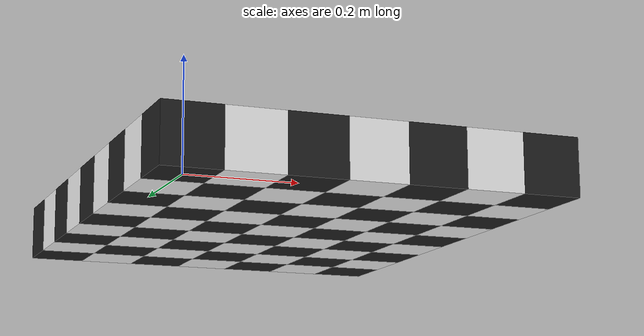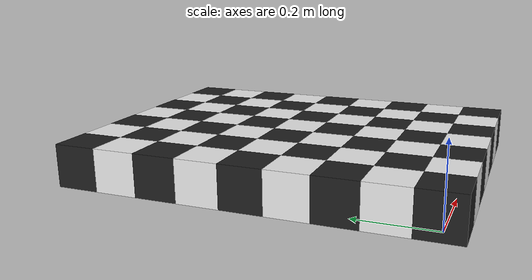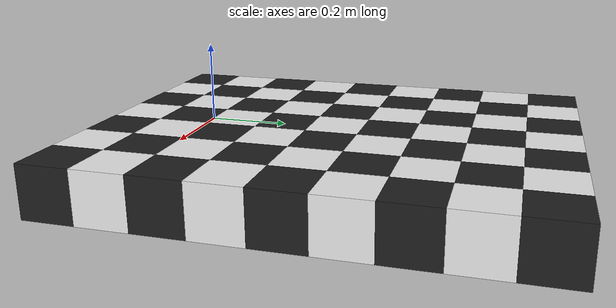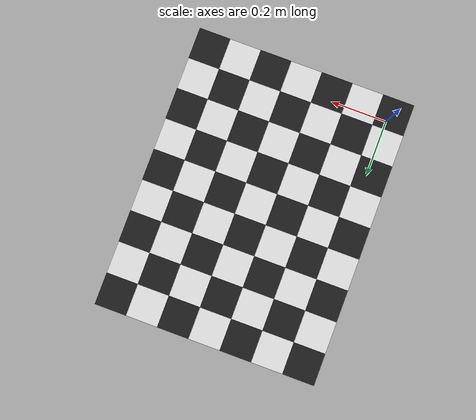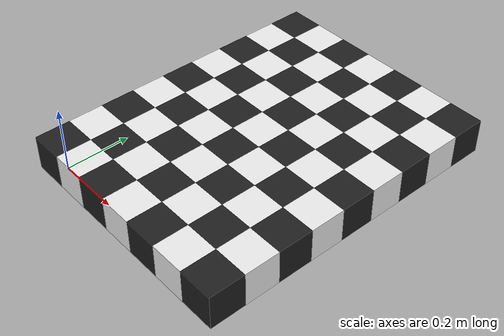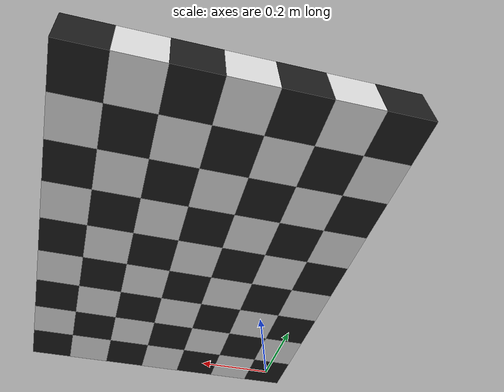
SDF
<?xml version="1.0" ?>
<sdf version="1.5">
  <model name="checkerboard">
    <link name="base">

        <visual name="visual_block00">
          <pose> 0.0 0.0 0.054 0 0 0 </pose>
          <cast_shadows>false</cast_shadows>
          <geometry>
            <box>
              <size> 0.108 0.108 0.108 </size>
            </box>
          </geometry>
          <material>
            <script>
              <uri>file://media/materials/scripts/gazebo.material</uri>
              <name>
                Gazebo/Black
              </name>
            </script>
          </material>
        </visual>

        <visual name="visual_block01">
          <pose> 0.108 0.0 0.054 0 0 0 </pose>
          <cast_shadows>false</cast_shadows>
          <geometry>
            <box>
              <size> 0.108 0.108 0.108 </size>
            </box>
          </geometry>
          <material>
            <script>
              <uri>file://media/materials/scripts/gazebo.material</uri>
              <name>
                Gazebo/White
              </name>
            </script>
          </material>
        </visual>

        <visual name="visual_block02">
          <pose> 0.216 0.0 0.054 0 0 0 </pose>
          <cast_shadows>false</cast_shadows>
          <geometry>
            <box>
              <size> 0.108 0.108 0.108 </size>
            </box>
          </geometry>
          <material>
            <script>
              <uri>file://media/materials/scripts/gazebo.material</uri>
              <name>
                Gazebo/Black
              </name>
            </script>
          </material>
        </visual>

        <visual name="visual_block03">
          <pose> 0.324 0.0 0.054 0 0 0 </pose>
          <cast_shadows>false</cast_shadows>
          <geometry>
            <box>
              <size> 0.108 0.108 0.108 </size>
            </box>
          </geometry>
          <material>
            <script>
              <uri>file://media/materials/scripts/gazebo.material</uri>
              <name>
                Gazebo/White
              </name>
            </script>
          </material>
        </visual>

        <visual name="visual_block04">
          <pose> 0.432 0.0 0.054 0 0 0 </pose>
          <cast_shadows>false</cast_shadows>
          <geometry>
            <box>
              <size> 0.108 0.108 0.108 </size>
            </box>
          </geometry>
          <material>
            <script>
              <uri>file://media/materials/scripts/gazebo.material</uri>
              <name>
                Gazebo/Black
              </name>
            </script>
          </material>
        </visual>

        <visual name="visual_block05">
          <pose> 0.54 0.0 0.054 0 0 0 </pose>
          <cast_shadows>false</cast_shadows>
          <geometry>
            <box>
              <size> 0.108 0.108 0.108 </size>
            </box>
          </geometry>
          <material>
            <script>
              <uri>file://media/materials/scripts/gazebo.material</uri>
              <name>
                Gazebo/White
              </name>
            </script>
          </material>
        </visual>

        <visual name="visual_block06">
          <pose> 0.648 0.0 0.054 0 0 0 </pose>
          <cast_shadows>false</cast_shadows>
          <geometry>
            <box>
              <size> 0.108 0.108 0.108 </size>
            </box>
          </geometry>
          <material>
            <script>
              <uri>file://media/materials/scripts/gazebo.material</uri>
              <name>
                Gazebo/Black
              </name>
            </script>
          </material>
        </visual>

        <visual name="visual_block08">
          <pose> 0.0 0.108 0.054 0 0 0 </pose>
          <cast_shadows>false</cast_shadows>
          <geometry>
            <box>
              <size> 0.108 0.108 0.108 </size>
            </box>
          </geometry>
          <material>
            <script>
              <uri>file://media/materials/scripts/gazebo.material</uri>
              <name>
                Gazebo/White
              </name>
            </script>
          </material>
        </visual>

        <visual name="visual_block09">
          <pose> 0.108 0.108 0.054 0 0 0 </pose>
          <cast_shadows>false</cast_shadows>
          <geometry>
            <box>
              <size> 0.108 0.108 0.108 </size>
            </box>
          </geometry>
          <material>
            <script>
              <uri>file://media/materials/scripts/gazebo.material</uri>
              <name>
                Gazebo/Black
              </name>
            </script>
          </material>
        </visual>

        <visual name="visual_block010">
          <pose> 0.216 0.108 0.054 0 0 0 </pose>
          <cast_shadows>false</cast_shadows>
          <geometry>
            <box>
              <size> 0.108 0.108 0.108 </size>
            </box>
          </geometry>
          <material>
            <script>
              <uri>file://media/materials/scripts/gazebo.material</uri>
              <name>
                Gazebo/White
              </name>
            </script>
          </material>
        </visual>

        <visual name="visual_block011">
          <pose> 0.324 0.108 0.054 0 0 0 </pose>
          <cast_shadows>false</cast_shadows>
          <geometry>
            <box>
              <size> 0.108 0.108 0.108 </size>
            </box>
          </geometry>
          <material>
            <script>
              <uri>file://media/materials/scripts/gazebo.material</uri>
              <name>
                Gazebo/Black
              </name>
            </script>
          </material>
        </visual>

        <visual name="visual_block012">
          <pose> 0.432 0.108 0.054 0 0 0 </pose>
          <cast_shadows>false</cast_shadows>
          <geometry>
            <box>
              <size> 0.108 0.108 0.108 </size>
            </box>
          </geometry>
          <material>
            <script>
              <uri>file://media/materials/scripts/gazebo.material</uri>
              <name>
                Gazebo/White
              </name>
            </script>
          </material>
        </visual>

        <visual name="visual_block013">
          <pose> 0.54 0.108 0.054 0 0 0 </pose>
          <cast_shadows>false</cast_shadows>
          <geometry>
            <box>
              <size> 0.108 0.108 0.108 </size>
            </box>
          </geometry>
          <material>
            <script>
              <uri>file://media/materials/scripts/gazebo.material</uri>
              <name>
                Gazebo/Black
              </name>
            </script>
          </material>
        </visual>

        <visual name="visual_block014">
          <pose> 0.648 0.108 0.054 0 0 0 </pose>
          <cast_shadows>false</cast_shadows>
          <geometry>
            <box>
              <size> 0.108 0.108 0.108 </size>
            </box>
          </geometry>
          <material>
            <script>
              <uri>file://media/materials/scripts/gazebo.material</uri>
              <name>
                Gazebo/White
              </name>
            </script>
          </material>
        </visual>

        <visual name="visual_block016">
          <pose> 0.0 0.216 0.054 0 0 0 </pose>
          <cast_shadows>false</cast_shadows>
          <geometry>
            <box>
              <size> 0.108 0.108 0.108 </size>
            </box>
          </geometry>
          <material>
            <script>
              <uri>file://media/materials/scripts/gazebo.material</uri>
              <name>
                Gazebo/Black
              </name>
            </script>
          </material>
        </visual>

        <visual name="visual_block017">
          <pose> 0.108 0.216 0.054 0 0 0 </pose>
          <cast_shadows>false</cast_shadows>
          <geometry>
            <box>
              <size> 0.108 0.108 0.108 </size>
            </box>
          </geometry>
          <material>
            <script>
              <uri>file://media/materials/scripts/gazebo.material</uri>
              <name>
                Gazebo/White
              </name>
            </script>
          </material>
        </visual>

        <visual name="visual_block018">
          <pose> 0.216 0.216 0.054 0 0 0 </pose>
          <cast_shadows>false</cast_shadows>
          <geometry>
            <box>
              <size> 0.108 0.108 0.108 </size>
            </box>
          </geometry>
          <material>
            <script>
              <uri>file://media/materials/scripts/gazebo.material</uri>
              <name>
                Gazebo/Black
              </name>
            </script>
          </material>
        </visual>

        <visual name="visual_block019">
          <pose> 0.324 0.216 0.054 0 0 0 </pose>
          <cast_shadows>false</cast_shadows>
          <geometry>
            <box>
              <size> 0.108 0.108 0.108 </size>
            </box>
          </geometry>
          <material>
            <script>
              <uri>file://media/materials/scripts/gazebo.material</uri>
              <name>
                Gazebo/White
              </name>
            </script>
          </material>
        </visual>

        <visual name="visual_block020">
          <pose> 0.432 0.216 0.054 0 0 0 </pose>
          <cast_shadows>false</cast_shadows>
          <geometry>
            <box>
              <size> 0.108 0.108 0.108 </size>
            </box>
          </geometry>
          <material>
            <script>
              <uri>file://media/materials/scripts/gazebo.material</uri>
              <name>
                Gazebo/Black
              </name>
            </script>
          </material>
        </visual>

        <visual name="visual_block021">
          <pose> 0.54 0.216 0.054 0 0 0 </pose>
          <cast_shadows>false</cast_shadows>
          <geometry>
            <box>
              <size> 0.108 0.108 0.108 </size>
            </box>
          </geometry>
          <material>
            <script>
              <uri>file://media/materials/scripts/gazebo.material</uri>
              <name>
                Gazebo/White
              </name>
            </script>
          </material>
        </visual>

        <visual name="visual_block022">
          <pose> 0.648 0.216 0.054 0 0 0 </pose>
          <cast_shadows>false</cast_shadows>
          <geometry>
            <box>
              <size> 0.108 0.108 0.108 </size>
            </box>
          </geometry>
          <material>
            <script>
              <uri>file://media/materials/scripts/gazebo.material</uri>
              <name>
                Gazebo/Black
              </name>
            </script>
          </material>
        </visual>

        <visual name="visual_block024">
          <pose> 0.0 0.324 0.054 0 0 0 </pose>
          <cast_shadows>false</cast_shadows>
          <geometry>
            <box>
              <size> 0.108 0.108 0.108 </size>
            </box>
          </geometry>
          <material>
            <script>
              <uri>file://media/materials/scripts/gazebo.material</uri>
              <name>
                Gazebo/White
              </name>
            </script>
          </material>
        </visual>

        <visual name="visual_block025">
          <pose> 0.108 0.324 0.054 0 0 0 </pose>
          <cast_shadows>false</cast_shadows>
          <geometry>
            <box>
              <size> 0.108 0.108 0.108 </size>
            </box>
          </geometry>
          <material>
            <script>
              <uri>file://media/materials/scripts/gazebo.material</uri>
              <name>
                Gazebo/Black
              </name>
            </script>
          </material>
        </visual>

        <visual name="visual_block026">
          <pose> 0.216 0.324 0.054 0 0 0 </pose>
          <cast_shadows>false</cast_shadows>
          <geometry>
            <box>
              <size> 0.108 0.108 0.108 </size>
            </box>
          </geometry>
          <material>
            <script>
              <uri>file://media/materials/scripts/gazebo.material</uri>
              <name>
                Gazebo/White
              </name>
            </script>
          </material>
        </visual>

        <visual name="visual_block027">
          <pose> 0.324 0.324 0.054 0 0 0 </pose>
          <cast_shadows>false</cast_shadows>
          <geometry>
            <box>
              <size> 0.108 0.108 0.108 </size>
            </box>
          </geometry>
          <material>
            <script>
              <uri>file://media/materials/scripts/gazebo.material</uri>
              <name>
                Gazebo/Black
              </name>
            </script>
          </material>
        </visual>

        <visual name="visual_block028">
          <pose> 0.432 0.324 0.054 0 0 0 </pose>
          <cast_shadows>false</cast_shadows>
          <geometry>
            <box>
              <size> 0.108 0.108 0.108 </size>
            </box>
          </geometry>
          <material>
            <script>
              <uri>file://media/materials/scripts/gazebo.material</uri>
              <name>
                Gazebo/White
              </name>
            </script>
          </material>
        </visual>

        <visual name="visual_block029">
          <pose> 0.54 0.324 0.054 0 0 0 </pose>
          <cast_shadows>false</cast_shadows>
          <geometry>
            <box>
              <size> 0.108 0.108 0.108 </size>
            </box>
          </geometry>
          <material>
            <script>
              <uri>file://media/materials/scripts/gazebo.material</uri>
              <name>
                Gazebo/Black
              </name>
            </script>
          </material>
        </visual>

        <visual name="visual_block030">
          <pose> 0.648 0.324 0.054 0 0 0 </pose>
          <cast_shadows>false</cast_shadows>
          <geometry>
            <box>
              <size> 0.108 0.108 0.108 </size>
            </box>
          </geometry>
          <material>
            <script>
              <uri>file://media/materials/scripts/gazebo.material</uri>
              <name>
                Gazebo/White
              </name>
            </script>
          </material>
        </visual>

        <visual name="visual_block032">
          <pose> 0.0 0.432 0.054 0 0 0 </pose>
          <cast_shadows>false</cast_shadows>
          <geometry>
            <box>
              <size> 0.108 0.108 0.108 </size>
            </box>
          </geometry>
          <material>
            <script>
              <uri>file://media/materials/scripts/gazebo.material</uri>
              <name>
                Gazebo/Black
              </name>
            </script>
          </material>
        </visual>

        <visual name="visual_block033">
          <pose> 0.108 0.432 0.054 0 0 0 </pose>
          <cast_shadows>false</cast_shadows>
          <geometry>
            <box>
              <size> 0.108 0.108 0.108 </size>
            </box>
          </geometry>
          <material>
            <script>
              <uri>file://media/materials/scripts/gazebo.material</uri>
              <name>
                Gazebo/White
              </name>
            </script>
          </material>
        </visual>

        <visual name="visual_block034">
          <pose> 0.216 0.432 0.054 0 0 0 </pose>
          <cast_shadows>false</cast_shadows>
          <geometry>
            <box>
              <size> 0.108 0.108 0.108 </size>
            </box>
          </geometry>
          <material>
            <script>
              <uri>file://media/materials/scripts/gazebo.material</uri>
              <name>
                Gazebo/Black
              </name>
            </script>
          </material>
        </visual>

        <visual name="visual_block035">
          <pose> 0.324 0.432 0.054 0 0 0 </pose>
          <cast_shadows>false</cast_shadows>
          <geometry>
            <box>
              <size> 0.108 0.108 0.108 </size>
            </box>
          </geometry>
          <material>
            <script>
              <uri>file://media/materials/scripts/gazebo.material</uri>
              <name>
                Gazebo/White
              </name>
            </script>
          </material>
        </visual>

        <visual name="visual_block036">
          <pose> 0.432 0.432 0.054 0 0 0 </pose>
          <cast_shadows>false</cast_shadows>
          <geometry>
            <box>
              <size> 0.108 0.108 0.108 </size>
            </box>
          </geometry>
          <material>
            <script>
              <uri>file://media/materials/scripts/gazebo.material</uri>
              <name>
                Gazebo/Black
              </name>
            </script>
          </material>
        </visual>

        <visual name="visual_block037">
          <pose> 0.54 0.432 0.054 0 0 0 </pose>
          <cast_shadows>false</cast_shadows>
          <geometry>
            <box>
              <size> 0.108 0.108 0.108 </size>
            </box>
          </geometry>
          <material>
            <script>
              <uri>file://media/materials/scripts/gazebo.material</uri>
              <name>
                Gazebo/White
              </name>
            </script>
          </material>
        </visual>

        <visual name="visual_block038">
          <pose> 0.648 0.432 0.054 0 0 0 </pose>
          <cast_shadows>false</cast_shadows>
          <geometry>
            <box>
              <size> 0.108 0.108 0.108 </size>
            </box>
          </geometry>
          <material>
            <script>
              <uri>file://media/materials/scripts/gazebo.material</uri>
              <name>
                Gazebo/Black
              </name>
            </script>
          </material>
        </visual>

        <visual name="visual_block040">
          <pose> 0.0 0.54 0.054 0 0 0 </pose>
          <cast_shadows>false</cast_shadows>
          <geometry>
            <box>
              <size> 0.108 0.108 0.108 </size>
            </box>
          </geometry>
          <material>
            <script>
              <uri>file://media/materials/scripts/gazebo.material</uri>
              <name>
                Gazebo/White
              </name>
            </script>
          </material>
        </visual>

        <visual name="visual_block041">
          <pose> 0.108 0.54 0.054 0 0 0 </pose>
          <cast_shadows>false</cast_shadows>
          <geometry>
            <box>
              <size> 0.108 0.108 0.108 </size>
            </box>
          </geometry>
          <material>
            <script>
              <uri>file://media/materials/scripts/gazebo.material</uri>
              <name>
                Gazebo/Black
              </name>
            </script>
          </material>
        </visual>

        <visual name="visual_block042">
          <pose> 0.216 0.54 0.054 0 0 0 </pose>
          <cast_shadows>false</cast_shadows>
          <geometry>
            <box>
              <size> 0.108 0.108 0.108 </size>
            </box>
          </geometry>
          <material>
            <script>
              <uri>file://media/materials/scripts/gazebo.material</uri>
              <name>
                Gazebo/White
              </name>
            </script>
          </material>
        </visual>

        <visual name="visual_block043">
          <pose> 0.324 0.54 0.054 0 0 0 </pose>
          <cast_shadows>false</cast_shadows>
          <geometry>
            <box>
              <size> 0.108 0.108 0.108 </size>
            </box>
          </geometry>
          <material>
            <script>
              <uri>file://media/materials/scripts/gazebo.material</uri>
              <name>
                Gazebo/Black
              </name>
            </script>
          </material>
        </visual>

        <visual name="visual_block044">
          <pose> 0.432 0.54 0.054 0 0 0 </pose>
          <cast_shadows>false</cast_shadows>
          <geometry>
            <box>
              <size> 0.108 0.108 0.108 </size>
            </box>
          </geometry>
          <material>
            <script>
              <uri>file://media/materials/scripts/gazebo.material</uri>
              <name>
                Gazebo/White
              </name>
            </script>
          </material>
        </visual>

        <visual name="visual_block045">
          <pose> 0.54 0.54 0.054 0 0 0 </pose>
          <cast_shadows>false</cast_shadows>
          <geometry>
            <box>
              <size> 0.108 0.108 0.108 </size>
            </box>
          </geometry>
          <material>
            <script>
              <uri>file://media/materials/scripts/gazebo.material</uri>
              <name>
                Gazebo/Black
              </name>
            </script>
          </material>
        </visual>

        <visual name="visual_block046">
          <pose> 0.648 0.54 0.054 0 0 0 </pose>
          <cast_shadows>false</cast_shadows>
          <geometry>
            <box>
              <size> 0.108 0.108 0.108 </size>
            </box>
          </geometry>
          <material>
            <script>
              <uri>file://media/materials/scripts/gazebo.material</uri>
              <name>
                Gazebo/White
              </name>
            </script>
          </material>
        </visual>

        <visual name="visual_block048">
          <pose> 0.0 0.648 0.054 0 0 0 </pose>
          <cast_shadows>false</cast_shadows>
          <geometry>
            <box>
              <size> 0.108 0.108 0.108 </size>
            </box>
          </geometry>
          <material>
            <script>
              <uri>file://media/materials/scripts/gazebo.material</uri>
              <name>
                Gazebo/Black
              </name>
            </script>
          </material>
        </visual>

        <visual name="visual_block049">
          <pose> 0.108 0.648 0.054 0 0 0 </pose>
          <cast_shadows>false</cast_shadows>
          <geometry>
            <box>
              <size> 0.108 0.108 0.108 </size>
            </box>
          </geometry>
          <material>
            <script>
              <uri>file://media/materials/scripts/gazebo.material</uri>
              <name>
                Gazebo/White
              </name>
            </script>
          </material>
        </visual>

        <visual name="visual_block050">
          <pose> 0.216 0.648 0.054 0 0 0 </pose>
          <cast_shadows>false</cast_shadows>
          <geometry>
            <box>
              <size> 0.108 0.108 0.108 </size>
            </box>
          </geometry>
          <material>
            <script>
              <uri>file://media/materials/scripts/gazebo.material</uri>
              <name>
                Gazebo/Black
              </name>
            </script>
          </material>
        </visual>

        <visual name="visual_block051">
          <pose> 0.324 0.648 0.054 0 0 0 </pose>
          <cast_shadows>false</cast_shadows>
          <geometry>
            <box>
              <size> 0.108 0.108 0.108 </size>
            </box>
          </geometry>
          <material>
            <script>
              <uri>file://media/materials/scripts/gazebo.material</uri>
              <name>
                Gazebo/White
              </name>
            </script>
          </material>
        </visual>

        <visual name="visual_block052">
          <pose> 0.432 0.648 0.054 0 0 0 </pose>
          <cast_shadows>false</cast_shadows>
          <geometry>
            <box>
              <size> 0.108 0.108 0.108 </size>
            </box>
          </geometry>
          <material>
            <script>
              <uri>file://media/materials/scripts/gazebo.material</uri>
              <name>
                Gazebo/Black
              </name>
            </script>
          </material>
        </visual>

        <visual name="visual_block053">
          <pose> 0.54 0.648 0.054 0 0 0 </pose>
          <cast_shadows>false</cast_shadows>
          <geometry>
            <box>
              <size> 0.108 0.108 0.108 </size>
            </box>
          </geometry>
          <material>
            <script>
              <uri>file://media/materials/scripts/gazebo.material</uri>
              <name>
                Gazebo/White
              </name>
            </script>
          </material>
        </visual>

        <visual name="visual_block054">
          <pose> 0.648 0.648 0.054 0 0 0 </pose>
          <cast_shadows>false</cast_shadows>
          <geometry>
            <box>
              <size> 0.108 0.108 0.108 </size>
            </box>
          </geometry>
          <material>
            <script>
              <uri>file://media/materials/scripts/gazebo.material</uri>
              <name>
                Gazebo/Black
              </name>
            </script>
          </material>
        </visual>

        <visual name="visual_block056">
          <pose> 0.0 0.756 0.054 0 0 0 </pose>
          <cast_shadows>false</cast_shadows>
          <geometry>
            <box>
              <size> 0.108 0.108 0.108 </size>
            </box>
          </geometry>
          <material>
            <script>
              <uri>file://media/materials/scripts/gazebo.material</uri>
              <name>
                Gazebo/White
              </name>
            </script>
          </material>
        </visual>

        <visual name="visual_block057">
          <pose> 0.108 0.756 0.054 0 0 0 </pose>
          <cast_shadows>false</cast_shadows>
          <geometry>
            <box>
              <size> 0.108 0.108 0.108 </size>
            </box>
          </geometry>
          <material>
            <script>
              <uri>file://media/materials/scripts/gazebo.material</uri>
              <name>
                Gazebo/Black
              </name>
            </script>
          </material>
        </visual>

        <visual name="visual_block058">
          <pose> 0.216 0.756 0.054 0 0 0 </pose>
          <cast_shadows>false</cast_shadows>
          <geometry>
            <box>
              <size> 0.108 0.108 0.108 </size>
            </box>
          </geometry>
          <material>
            <script>
              <uri>file://media/materials/scripts/gazebo.material</uri>
              <name>
                Gazebo/White
              </name>
            </script>
          </material>
        </visual>

        <visual name="visual_block059">
          <pose> 0.324 0.756 0.054 0 0 0 </pose>
          <cast_shadows>false</cast_shadows>
          <geometry>
            <box>
              <size> 0.108 0.108 0.108 </size>
            </box>
          </geometry>
          <material>
            <script>
              <uri>file://media/materials/scripts/gazebo.material</uri>
              <name>
                Gazebo/Black
              </name>
            </script>
          </material>
        </visual>

        <visual name="visual_block060">
          <pose> 0.432 0.756 0.054 0 0 0 </pose>
          <cast_shadows>false</cast_shadows>
          <geometry>
            <box>
              <size> 0.108 0.108 0.108 </size>
            </box>
          </geometry>
          <material>
            <script>
              <uri>file://media/materials/scripts/gazebo.material</uri>
              <name>
                Gazebo/White
              </name>
            </script>
          </material>
        </visual>

        <visual name="visual_block061">
          <pose> 0.54 0.756 0.054 0 0 0 </pose>
          <cast_shadows>false</cast_shadows>
          <geometry>
            <box>
              <size> 0.108 0.108 0.108 </size>
            </box>
          </geometry>
          <material>
            <script>
              <uri>file://media/materials/scripts/gazebo.material</uri>
              <name>
                Gazebo/Black
              </name>
            </script>
          </material>
        </visual>

        <visual name="visual_block062">
          <pose> 0.648 0.756 0.054 0 0 0 </pose>
          <cast_shadows>false</cast_shadows>
          <geometry>
            <box>
              <size> 0.108 0.108 0.108 </size>
            </box>
          </geometry>
          <material>
            <script>
              <uri>file://media/materials/scripts/gazebo.material</uri>
              <name>
                Gazebo/White
              </name>
            </script>
          </material>
        </visual>

        <visual name="visual_block064">
          <pose> 0.0 0.864 0.054 0 0 0 </pose>
          <cast_shadows>false</cast_shadows>
          <geometry>
            <box>
              <size> 0.108 0.108 0.108 </size>
            </box>
          </geometry>
          <material>
            <script>
              <uri>file://media/materials/scripts/gazebo.material</uri>
              <name>
                Gazebo/Black
              </name>
            </script>
          </material>
        </visual>

        <visual name="visual_block065">
          <pose> 0.108 0.864 0.054 0 0 0 </pose>
          <cast_shadows>false</cast_shadows>
          <geometry>
            <box>
              <size> 0.108 0.108 0.108 </size>
            </box>
          </geometry>
          <material>
            <script>
              <uri>file://media/materials/scripts/gazebo.material</uri>
              <name>
                Gazebo/White
              </name>
            </script>
          </material>
        </visual>

        <visual name="visual_block066">
          <pose> 0.216 0.864 0.054 0 0 0 </pose>
          <cast_shadows>false</cast_shadows>
          <geometry>
            <box>
              <size> 0.108 0.108 0.108 </size>
            </box>
          </geometry>
          <material>
            <script>
              <uri>file://media/materials/scripts/gazebo.material</uri>
              <name>
                Gazebo/Black
              </name>
            </script>
          </material>
        </visual>

        <visual name="visual_block067">
          <pose> 0.324 0.864 0.054 0 0 0 </pose>
          <cast_shadows>false</cast_shadows>
          <geometry>
            <box>
              <size> 0.108 0.108 0.108 </size>
            </box>
          </geometry>
          <material>
            <script>
              <uri>file://media/materials/scripts/gazebo.material</uri>
              <name>
                Gazebo/White
              </name>
            </script>
          </material>
        </visual>

        <visual name="visual_block068">
          <pose> 0.432 0.864 0.054 0 0 0 </pose>
          <cast_shadows>false</cast_shadows>
          <geometry>
            <box>
              <size> 0.108 0.108 0.108 </size>
            </box>
          </geometry>
          <material>
            <script>
              <uri>file://media/materials/scripts/gazebo.material</uri>
              <name>
                Gazebo/Black
              </name>
            </script>
          </material>
        </visual>

        <visual name="visual_block069">
          <pose> 0.54 0.864 0.054 0 0 0 </pose>
          <cast_shadows>false</cast_shadows>
          <geometry>
            <box>
              <size> 0.108 0.108 0.108 </size>
            </box>
          </geometry>
          <material>
            <script>
              <uri>file://media/materials/scripts/gazebo.material</uri>
              <name>
                Gazebo/White
              </name>
            </script>
          </material>
        </visual>

        <visual name="visual_block070">
          <pose> 0.648 0.864 0.054 0 0 0 </pose>
          <cast_shadows>false</cast_shadows>
          <geometry>
            <box>
              <size> 0.108 0.108 0.108 </size>
            </box>
          </geometry>
          <material>
            <script>
              <uri>file://media/materials/scripts/gazebo.material</uri>
              <name>
                Gazebo/Black
              </name>
            </script>
          </material>
        </visual>

    <collision name="collsion">
      <pose> 0.324 0.432 0.054 0 0 0 </pose>
      <geometry>
        <box>
          <size> 0.756 0.972 0.108 </size>
        </box>
      </geometry>
    </collision>
    </link>
    <plugin name="object_controller" filename="libgazebo_ros_planar_move.so">
      <commandTopic>cmd_vel</commandTopic>
      <odometryTopic>odom</odometryTopic>
      <odometryFrame>odom</odometryFrame>
      <odometryRate>20.0</odometryRate>
      <robotBaseFrame>base</robotBaseFrame>
    </plugin>
  </model>
</sdf>
